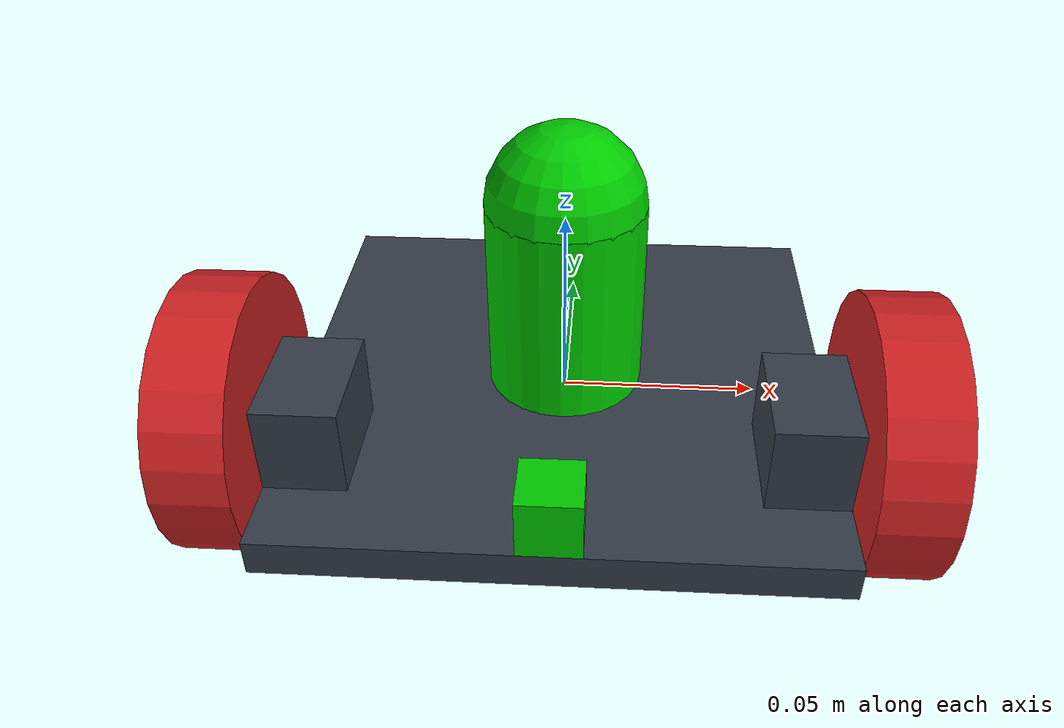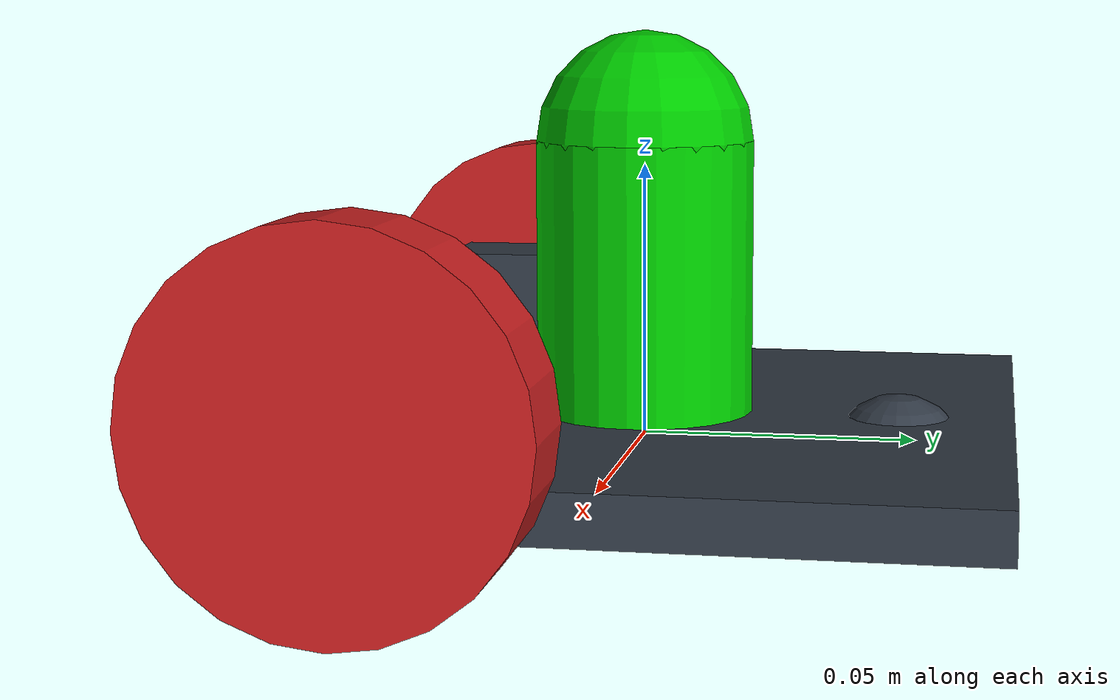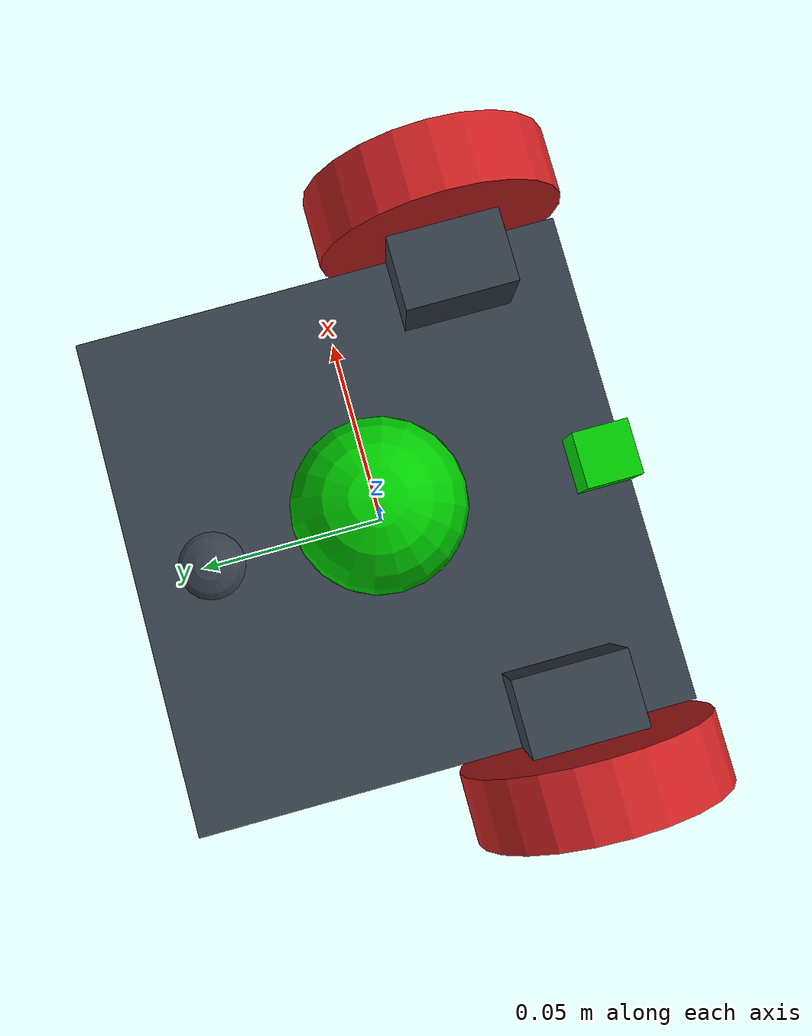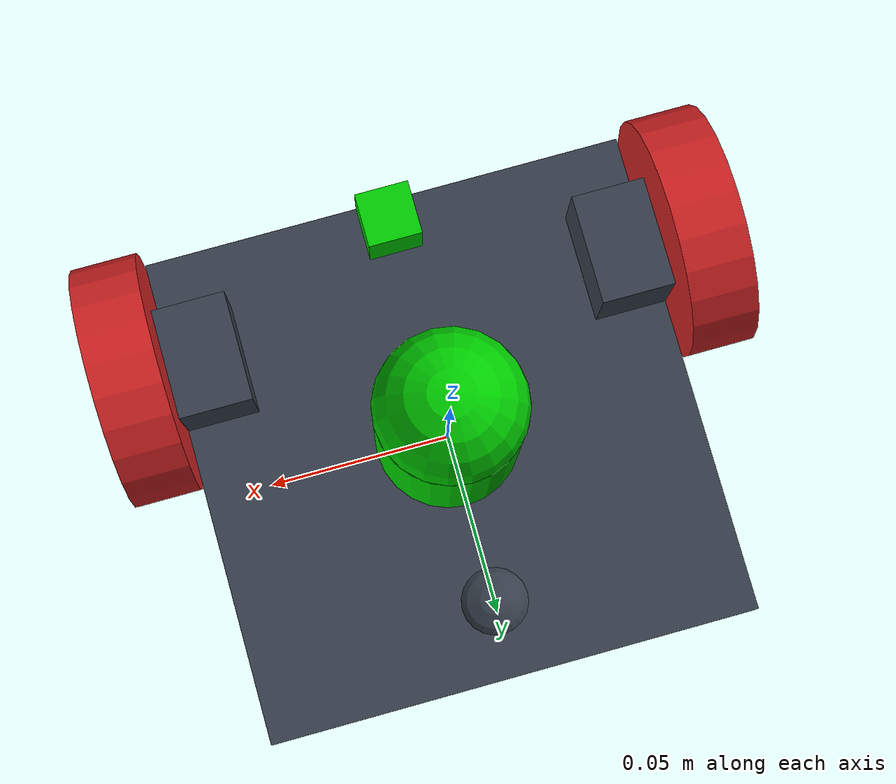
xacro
<?xml version="1.0" ?>

<robot name="robot_with_sensors" xmlns:xacro="https://www.ros.org/wiki/xacro" >

  <xacro:include filename="$(find challenge_project)/urdf/robot_with_sensors_materials.xacro" />
  <xacro:include filename="$(find challenge_project)/urdf/robot_with_sensors.gazebo" />

  <!-- ========================== Chassis definition ======================== -->
  <link name="link_chassis">

    <pose>0 0 0.0175 0 0 0</pose>

    <!-- %%%%%%%%%%%%%%%%%%%%%%%% Chassis definition %%%%%%%%%%%%%%%%%%%%%%%% -->
    <visual>
      <origin rpy="0 0 0" xyz="0 0 0"/>
      <geometry>
        <box size="0.136 0.136 0.009"/>
      </geometry>
      <material name="blue"/>
    </visual>

    <collision name="collision_chassis">
      <geometry>
        <box size="0.136 0.136 0.009"/>
      </geometry>
    </collision>

    <inertial name="inertial_chassis">
      <mass value="0.150"/>
      <origin rpy="0 0 0" xyz="0 0 0"/>
      <inertia ixx="0.00033245" ixy="0" ixz="0" iyy="0.00033245" iyz="0" izz="0.0004624"/>
    </inertial>

    <!-- %%%%%%%%%%%%%%%%%%%%%%%% Motor on the left %%%%%%%%%%%%%%%%%%%%%%%% -->
    <visual>
      <origin rpy="0 0 0" xyz="-0.058 -0.035 0.0155"/>
      <geometry>
        <box size="0.020 0.030 0.022"/>
      </geometry>
      <material name="blue"/>
    </visual>

    <collision name="collision_motor_left">
      <origin rpy="0 0 0" xyz="-0.058 -0.035 0.0155"/>
      <geometry>
        <box size="0.020 0.030 0.022"/>
      </geometry>
    </collision>

    <inertial name="inertial_motor_left">
      <mass value="0.082"/>
      <origin rpy="0 0 0" xyz="0 0 0"/>
      <inertia ixx="0.000009457" ixy="0" ixz="0" iyy="0.000006041" iyz="0" izz="0.000008883"/>
    </inertial>

    <!-- %%%%%%%%%%%%%%%%%%%%%%%% Motor on the right %%%%%%%%%%%%%%%%%%%%%%%% -->
    <visual>
      <origin rpy="0 0 0" xyz="0.058 -0.035 0.0155"/>
      <geometry>
        <box size="0.020 0.030 0.022"/>
      </geometry>
      <material name="blue"/>
    </visual>

    <collision name="collision_motor_right">
      <origin rpy="0 0 0" xyz="0.058 -0.035 0.0155"/>
      <geometry>
        <box size="0.020 0.030 0.022"/>
      </geometry>
    </collision>

    <inertial name="inertial_motor_right">
      <mass value="0.082"/>
      <origin rpy="0 0 0" xyz="0 0 0"/>
      <inertia ixx="0.000009457" ixy="0" ixz="0" iyy="0.000006041" iyz="0" izz="0.000008883"/>
    </inertial>

    <!-- %%%%%%%%%%%%%%%%%%%%%%%% Caster %%%%%%%%%%%%%%%%%%%%%%%% -->
    <visual>
      <origin rpy=" 0 0 0" xyz="0 0.047 -0.0045"/>
      <geometry>
        <sphere radius="0.013"/>
      </geometry>
      <material name="blue"/>
    </visual>

    <collision name="collision_caster">
      <origin rpy=" 0 0 0" xyz="0 0.047 -0.0045"/>
      <geometry>
        <sphere radius="0.013"/>
      </geometry>
      <surface>
        <friction>
          <ode>
            <mu>0</mu>
            <mu2>0</mu2>
            <slip1>1.0</slip1>
            <slip2>1.0</slip2>
          </ode>
        </friction>
      </surface>
    </collision>

    <!-- %%%%%%%%%%%%%%%%%%%%%%%% LASER support %%%%%%%%%%%%%%%%%%%%% -->
    <visual>
      <origin rpy="0 0 0" xyz="0 0 0.0295"/>
      <geometry>
        <cylinder length="0.05" radius="0.02"/>
      </geometry>
      <material name="green"/>
    </visual>

    <collision name="collision_lds_chassis">
      <origin rpy="0 0 0" xyz="0 0 0.0295"/>
      <geometry>
        <cylinder length="0.05" radius="0.02"/>
      </geometry>
    </collision>

  </link>

  <!-- ======================= Right wheel definition =================== -->
  <link name="link_right_wheel">

    <visual>
      <origin rpy="0 1.5707 0" xyz="0 0 0"/>
      <geometry>
        <cylinder length="0.018" radius="0.033"/>
      </geometry>
      <material name="red"/>
    </visual>

    <collision name="collision_right_wheel">
      <origin rpy="0 1.5707 0" xyz="0 0 0"/>
      <geometry>
        <cylinder length="0.018" radius="0.033"/>
      </geometry>
    </collision>

    <inertial name="inertial_right_wheel">
      <mass value="0.120"/>
      <origin rpy="0 1.5707 0" xyz="0 0 0"/>
      <inertia ixx="0.03109224" ixy="0" ixz="0" iyy="0.03109224" iyz="0" izz="0.00006534"/>
    </inertial>

  </link>

  <!-- %%%%%%%%%  Joint for right wheel  %%%%%%%%% -->
  <joint name="joint_right_wheel" type="continuous">
    <origin rpy="0 0 0" xyz="-0.077 -0.035 0.0155"/>
    <child link="link_right_wheel" />
    <parent link="link_chassis"/>
    <axis rpy="0 0 0" xyz="1 0 0"/>
    <limit effort="10000" velocity="1000"/>
    <joint_properties damping="1.0" friction="1.0" />
  </joint>

  <!-- ======================= Left wheel definition =================== -->
  <link name="link_left_wheel">

    <visual>
      <origin rpy="0 1.5707 0" xyz="0 0 0"/>
      <geometry>
        <cylinder length="0.018" radius="0.033"/>
      </geometry>
      <material name="red"/>
    </visual>

    <collision name="collision_left_wheel">
      <origin rpy="0 1.5707 0" xyz="0 0 0"/>
      <geometry>
        <cylinder length="0.018" radius="0.033"/>
      </geometry>
    </collision>

    <inertial name="inertial_left_wheel">
      <mass value="0.120"/>
      <origin rpy="0 1.5707 0" xyz="0 0 0"/>
      <inertia ixx="0.03109224" ixy="0" ixz="0" iyy="0.03109224" iyz="0" izz="0.00006534"/>
    </inertial>
  </link>

  <!-- %%%%%%%%%  Joint for left wheel  %%%%%%%%% -->
  <joint name="joint_left_wheel" type="continuous">
    <origin rpy="0 0 0" xyz="0.077 -0.035 0.0155"/>
    <child link="link_left_wheel" />
    <parent link="link_chassis"/>
    <axis rpy="0 0 0" xyz="1 0 0"/>
    <limit effort="10000" velocity="1000"/>
    <joint_properties damping="1.0" friction="1.0" />
  </joint>

  <!-- ======================= Camera definition =================== -->
  <link name="link_camera">

    <visual>
      <origin xyz="0 0 0" rpy="0 0 0"/>
      <geometry>
        <box size="0.015 0.015 0.015"/>
      </geometry>
      <material name="green"/>
    </visual>

    <collision name="collision_camera">
      <origin xyz="0 0 0" rpy="0 0 0"/>
      <geometry>
        <box size="0.015 0.015 0.015"/>
      </geometry>
      <material name="green"/>
    </collision>

    <inertial name="inertial_camera">
      <mass value="0.020"/>
      <origin rpy="0 0 0" xyz="0 0 0"/>
      <inertia ixx="0.00000075" ixy="0" ixz="0" iyy="0.00000075" iyz="0" izz="0.00000075"/>
    </inertial>

  </link>

  <!-- %%%%%%%%% Joint for camera %%%%%%%%% -->
  <joint name="joint_camera" type="fixed">
    <axis xyz="0 1 0" />
    <origin xyz="0 -0.0605 0.012" rpy="0 0 -1.5707"/>
    <parent link="link_chassis"/>
    <child link="link_camera"/>
  </joint>

  <!-- ==================== LDS definition ======================== -->
  <link name="link_lds">

    <visual>
      <origin rpy="0 0 0" xyz="0 0 0"/>
      <geometry>
        <sphere radius="0.02"/>
      </geometry>
      <material name="green"/>
    </visual>

    <collision name="collision_lds2">
      <origin rpy="0 0 0" xyz="0 0 0"/>
      <geometry>
        <sphere radius="0.02"/>
      </geometry>
    </collision>

  </link>

  <!-- %%%%%%%%% Joint for LDS %%%%%%%%%%%%%%%%% -->
  <joint name="joint_lds" type="fixed">
    <axis xyz="0 0 0"/>
    <origin xyz="0 0 0.0545" rpy="0 0 4.712"/>
    <parent link="link_chassis"/>
    <child link="link_lds"/>
  </joint>

</robot>

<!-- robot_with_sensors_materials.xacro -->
<robot>

  <material name="black">
    <color rgba="0.0 0.0 0.0 1.0"/>
  </material>

  <material name="blue">
    <color rgba="0.203125 0.23828125 0.28515625 1.0"/>
  </material>

  <material name="green">
    <color rgba="0.0 0.8 0.0 1.0"/>
  </material>

  <material name="grey">
    <color rgba="0.2 0.2 0.2 1.0"/>
  </material>

  <material name="orange">
    <color rgba="1.0 0.423529411765 0.0392156862745 1.0"/>
  </material>

  <material name="brown">
    <color rgba="0.870588235294 0.811764705882 0.764705882353 1.0"/>
  </material>

  <material name="red">
    <color rgba="0.80078125 0.12890625 0.1328125 1.0"/>
  </material>

  <material name="white">
    <color rgba="1.0 1.0 1.0 1.0"/>
  </material>

</robot>
